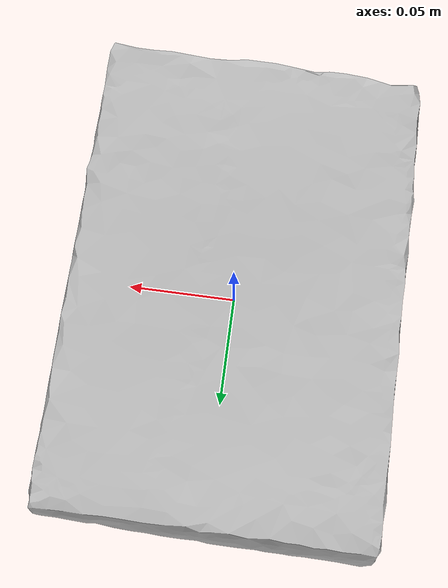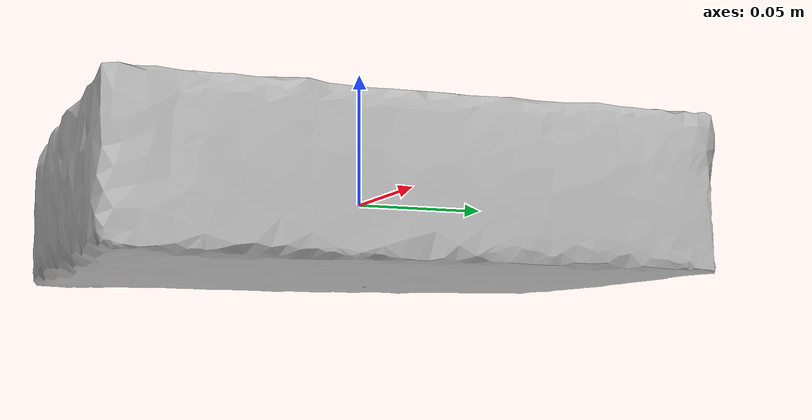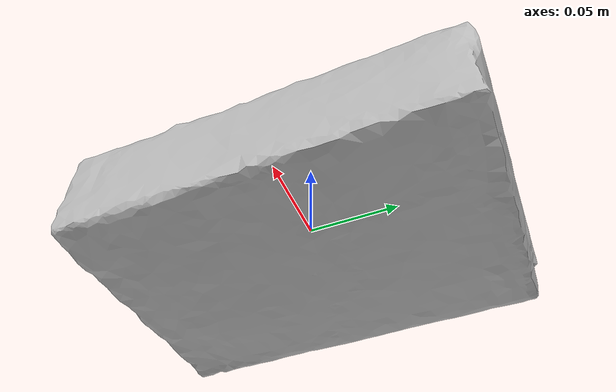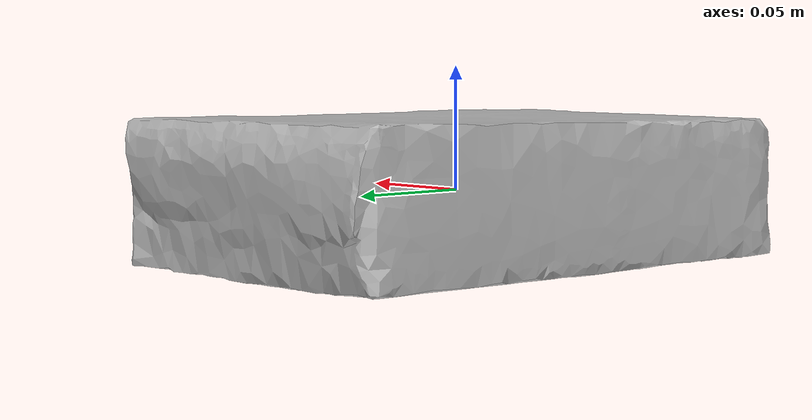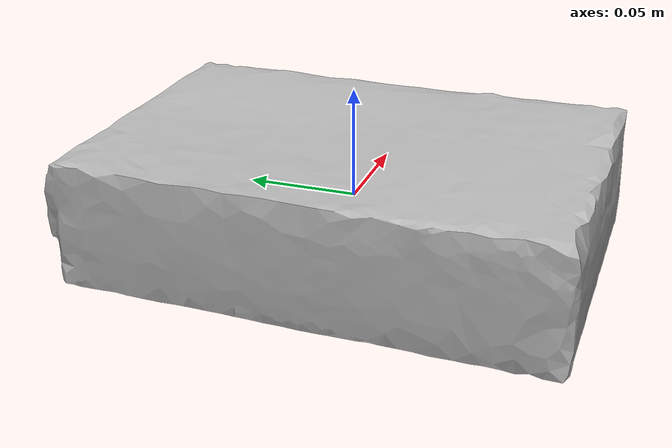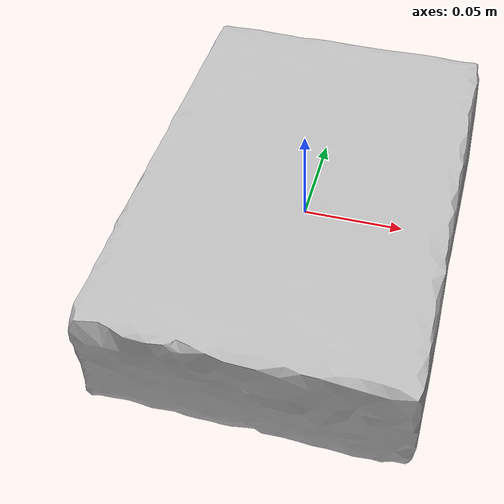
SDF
<?xml version="1.0" ?>
<sdf version="1.6">
  <model name="cheezit_big_original">
    <link name="cheezit_big_original_link">
      <inertial>
        <pose>0.0 0.0 0.0 0 0 0</pose>
        <mass>0.5</mass>
        <inertia>
          <ixx>0.0012</ixx>
          <ixy>0.0</ixy>
          <ixz>0.0</ixz>
          <iyy>0.0018</iyy>
          <iyz>0.0</iyz>
          <izz>0.0024</izz>
        </inertia>
      </inertial>

      <visual name="cheezit_big_original_visual">
        <pose>0 0 0 0 0 0 </pose>
        <geometry>
          <mesh>
            <uri>model://cheezit_big_original/meshes/cheezit_big_original.dae</uri>
          </mesh>
        </geometry>
      </visual>

      <collision name="cheezit_big_original_collision">
        <pose>0 0 0 0 0 0</pose>
        <geometry>
          <mesh>
            <uri>model://cheezit_big_original/meshes/cheezit_big_original.dae</uri>
          </mesh>
        </geometry>
        <surface>
          <friction>
            <ode>
              <mu>1.0</mu>
              <mu2>1.0</mu2>
            </ode>
          </friction>
        </surface>
      </collision>

    </link>
    <static>false</static>
  </model>
</sdf>
